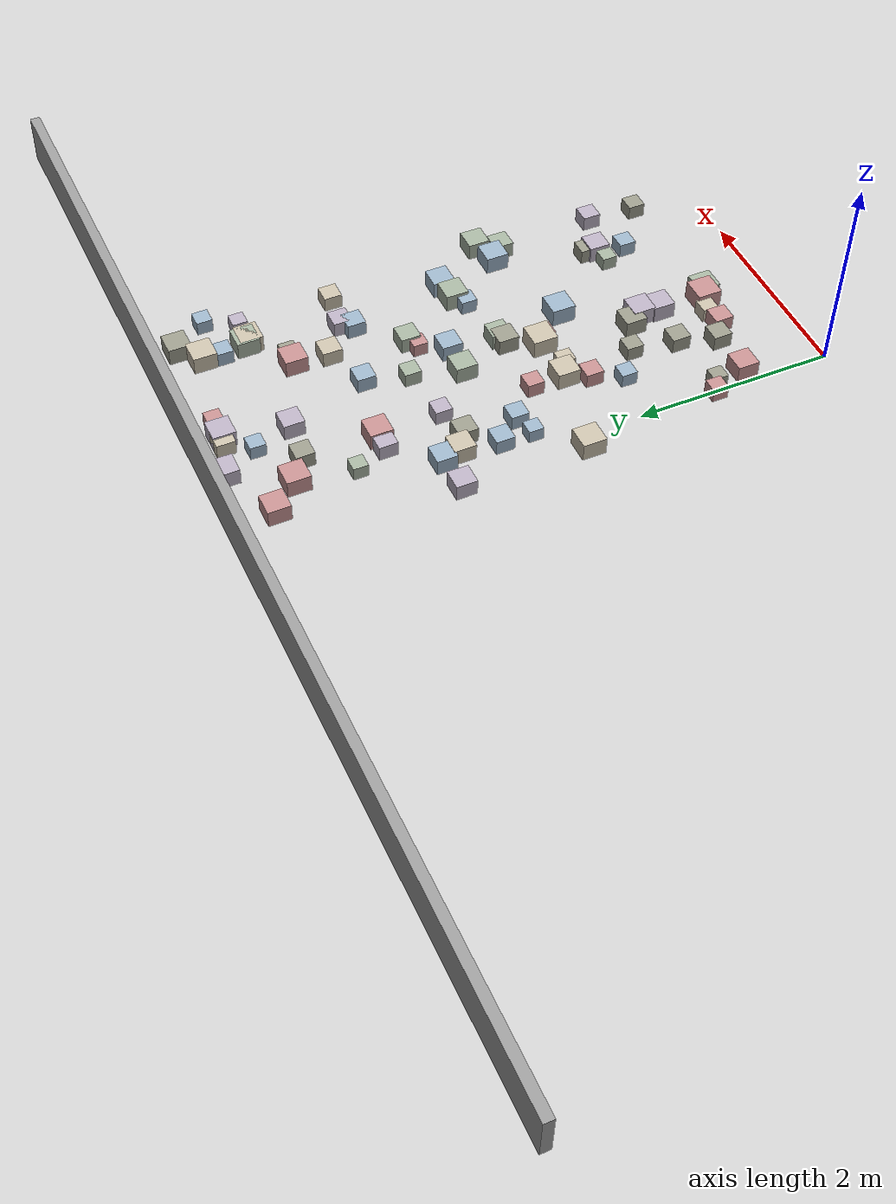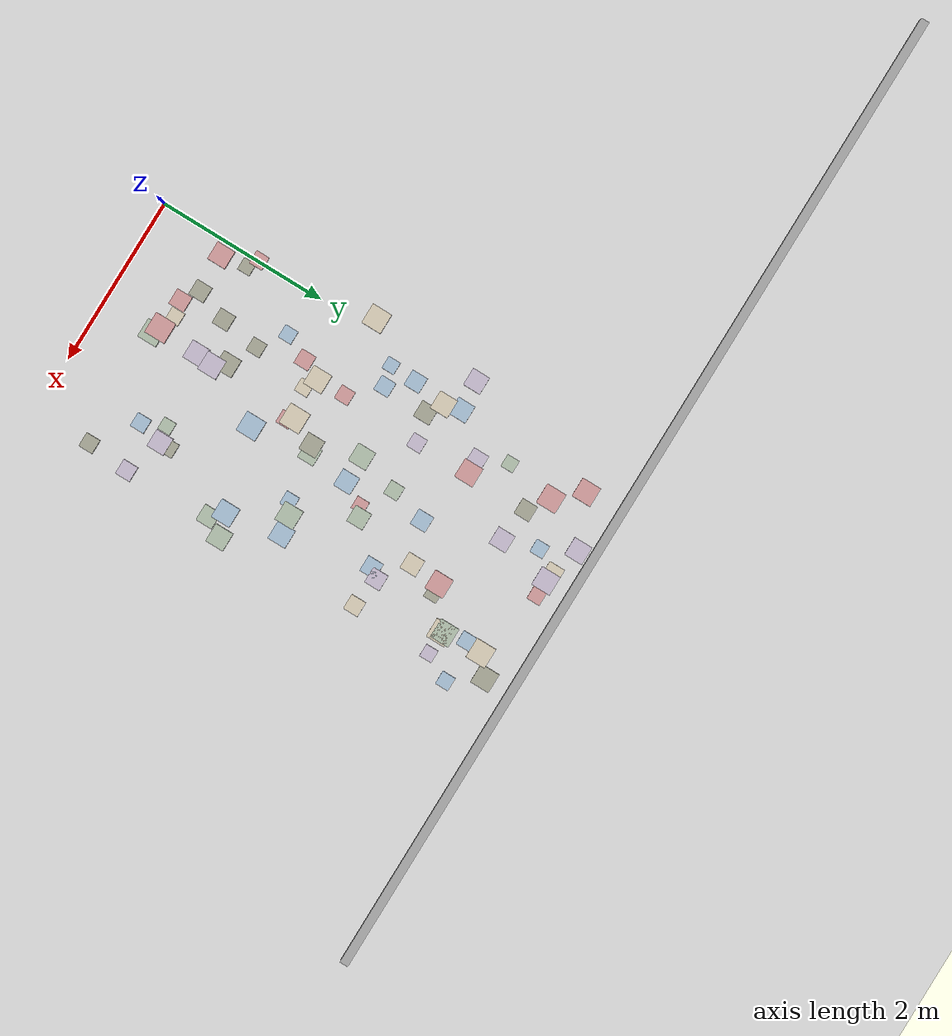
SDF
<sdf version="1.6">
 <world name="small_maze_world">
  <include><uri>model://ground_plane</uri></include>
  <include><uri>model://sun</uri></include>
  <model name="wall_north">
   <static>true</static>
   <pose>0 6 0.25 0 0 0</pose>
   <link name="link">
    <collision name="collision"><geometry><box><size>12 0.1 0.5</size></box></geometry></collision>
    <visual name="visual">
     <geometry><box><size>12 0.1 0.5</size></box></geometry>
     <material><ambient>0.6 0.6 0.6 1</ambient></material>
    </visual>
   </link>
  </model>
  <model name="box_18">
   <static>false</static>
   <pose>1.25 2.44 0.05 0 0 0</pose>
   <link name="link">
    <inertial>
     <mass>0.2</mass>
     <inertia><ixx>0.001</ixx><iyy>0.001</iyy><izz>0.001</izz><ixy>0</ixy><ixz>0</ixz><iyz>0</iyz></inertia>
    </inertial>
    <collision name="collision"><geometry><box><size>0.25 0.25 0.25</size></box></geometry></collision>
    <visual name="visual">
     <geometry><box><size>0.25 0.25 0.25</size></box></geometry>
     <material><ambient>0.78 0.74 0.66 1</ambient><diffuse>0.78 0.74 0.66 1</diffuse></material>
    </visual>
   </link>
  </model>
  <model name="box_24">
   <static>false</static>
   <pose>2.65 2.2 0.05 0 0 0</pose>
   <link name="link">
    <inertial>
     <mass>0.2</mass>
     <inertia><ixx>0.001</ixx><iyy>0.001</iyy><izz>0.001</izz><ixy>0</ixy><ixz>0</ixz><iyz>0</iyz></inertia>
    </inertial>
    <collision name="collision"><geometry><box><size>0.2 0.2 0.2</size></box></geometry></collision>
    <visual name="visual">
     <geometry><box><size>0.2 0.2 0.2</size></box></geometry>
     <material><ambient>0.64 0.69 0.62 1</ambient><diffuse>0.64 0.69 0.62 1</diffuse></material>
    </visual>
   </link>
  </model>
  <model name="box_25">
   <static>false</static>
   <pose>2.66 5.02 0.05 0 0 0</pose>
   <link name="link">
    <inertial>
     <mass>0.2</mass>
     <inertia><ixx>0.001</ixx><iyy>0.001</iyy><izz>0.001</izz><ixy>0</ixy><ixz>0</ixz><iyz>0</iyz></inertia>
    </inertial>
    <collision name="collision"><geometry><box><size>0.15 0.15 0.15</size></box></geometry></collision>
    <visual name="visual">
     <geometry><box><size>0.15 0.15 0.15</size></box></geometry>
     <material><ambient>0.72 0.68 0.75 1</ambient><diffuse>0.72 0.68 0.75 1</diffuse></material>
    </visual>
   </link>
  </model>
  <model name="box_28">
   <static>false</static>
   <pose>2.64 4.06 0.05 0 0 0</pose>
   <link name="link">
    <inertial>
     <mass>0.2</mass>
     <inertia><ixx>0.001</ixx><iyy>0.001</iyy><izz>0.001</izz><ixy>0</ixy><ixz>0</ixz><iyz>0</iyz></inertia>
    </inertial>
    <collision name="collision"><geometry><box><size>0.18 0.18 0.18</size></box></geometry></collision>
    <visual name="visual">
     <geometry><box><size>0.18 0.18 0.18</size></box></geometry>
     <material><ambient>0.78 0.74 0.66 1</ambient><diffuse>0.78 0.74 0.66 1</diffuse></material>
    </visual>
   </link>
  </model>
  <model name="box_30">
   <static>false</static>
   <pose>2.27 4.11 0.05 0 0 0</pose>
   <link name="link">
    <inertial>
     <mass>0.2</mass>
     <inertia><ixx>0.001</ixx><iyy>0.001</iyy><izz>0.001</izz><ixy>0</ixy><ixz>0</ixz><iyz>0</iyz></inertia>
    </inertial>
    <collision name="collision"><geometry><box><size>0.19 0.19 0.19</size></box></geometry></collision>
    <visual name="visual">
     <geometry><box><size>0.19 0.19 0.19</size></box></geometry>
     <material><ambient>0.72 0.68 0.75 1</ambient><diffuse>0.72 0.68 0.75 1</diffuse></material>
    </visual>
   </link>
  </model>
  <model name="box_31">
   <static>false</static>
   <pose>0.78 5.1 0.05 0 0 0</pose>
   <link name="link">
    <inertial>
     <mass>0.2</mass>
     <inertia><ixx>0.001</ixx><iyy>0.001</iyy><izz>0.001</izz><ixy>0</ixy><ixz>0</ixz><iyz>0</iyz></inertia>
    </inertial>
    <collision name="collision"><geometry><box><size>0.19 0.19 0.19</size></box></geometry></collision>
    <visual name="visual">
     <geometry><box><size>0.19 0.19 0.19</size></box></geometry>
     <material><ambient>0.6 0.6 0.54 1</ambient><diffuse>0.6 0.6 0.54 1</diffuse></material>
    </visual>
   </link>
  </model>
  <model name="box_40">
   <static>false</static>
   <pose>1.8 3.6 0.05 0 0 0</pose>
   <link name="link">
    <inertial>
     <mass>0.2</mass>
     <inertia><ixx>0.001</ixx><iyy>0.001</iyy><izz>0.001</izz><ixy>0</ixy><ixz>0</ixz><iyz>0</iyz></inertia>
    </inertial>
    <collision name="collision"><geometry><box><size>0.2 0.2 0.2</size></box></geometry></collision>
    <visual name="visual">
     <geometry><box><size>0.2 0.2 0.2</size></box></geometry>
     <material><ambient>0.64 0.69 0.62 1</ambient><diffuse>0.64 0.69 0.62 1</diffuse></material>
    </visual>
   </link>
  </model>
  <model name="box_42">
   <static>false</static>
   <pose>-0.14 2.63 0.05 0 0 0</pose>
   <link name="link">
    <inertial>
     <mass>0.2</mass>
     <inertia><ixx>0.001</ixx><iyy>0.001</iyy><izz>0.001</izz><ixy>0</ixy><ixz>0</ixz><iyz>0</iyz></inertia>
    </inertial>
    <collision name="collision"><geometry><box><size>0.24 0.24 0.24</size></box></geometry></collision>
    <visual name="visual">
     <geometry><box><size>0.24 0.24 0.24</size></box></geometry>
     <material><ambient>0.78 0.74 0.66 1</ambient><diffuse>0.78 0.74 0.66 1</diffuse></material>
    </visual>
   </link>
  </model>
  <model name="box_43">
   <static>false</static>
   <pose>0.27 5.56 0.05 0 0 0</pose>
   <link name="link">
    <inertial>
     <mass>0.2</mass>
     <inertia><ixx>0.001</ixx><iyy>0.001</iyy><izz>0.001</izz><ixy>0</ixy><ixz>0</ixz><iyz>0</iyz></inertia>
    </inertial>
    <collision name="collision"><geometry><box><size>0.23 0.23 0.23</size></box></geometry></collision>
    <visual name="visual">
     <geometry><box><size>0.23 0.23 0.23</size></box></geometry>
     <material><ambient>0.76 0.56 0.56 1</ambient><diffuse>0.76 0.56 0.56 1</diffuse></material>
    </visual>
   </link>
  </model>
  <model name="box_44">
   <static>false</static>
   <pose>0.81 0.71 0.05 0 0 0</pose>
   <link name="link">
    <inertial>
     <mass>0.2</mass>
     <inertia><ixx>0.001</ixx><iyy>0.001</iyy><izz>0.001</izz><ixy>0</ixy><ixz>0</ixz><iyz>0</iyz></inertia>
    </inertial>
    <collision name="collision"><geometry><box><size>0.19 0.19 0.19</size></box></geometry></collision>
    <visual name="visual">
     <geometry><box><size>0.19 0.19 0.19</size></box></geometry>
     <material><ambient>0.76 0.56 0.56 1</ambient><diffuse>0.76 0.56 0.56 1</diffuse></material>
    </visual>
   </link>
  </model>
  <model name="box_52">
   <static>false</static>
   <pose>0.53 5.27 0.05 0 0 0</pose>
   <link name="link">
    <inertial>
     <mass>0.2</mass>
     <inertia><ixx>0.001</ixx><iyy>0.001</iyy><izz>0.001</izz><ixy>0</ixy><ixz>0</ixz><iyz>0</iyz></inertia>
    </inertial>
    <collision name="collision"><geometry><box><size>0.24 0.24 0.24</size></box></geometry></collision>
    <visual name="visual">
     <geometry><box><size>0.24 0.24 0.24</size></box></geometry>
     <material><ambient>0.76 0.56 0.56 1</ambient><diffuse>0.76 0.56 0.56 1</diffuse></material>
    </visual>
   </link>
  </model>
  <model name="box_61">
   <static>false</static>
   <pose>1.31 2.36 0.05 0 0 0</pose>
   <link name="link">
    <inertial>
     <mass>0.2</mass>
     <inertia><ixx>0.001</ixx><iyy>0.001</iyy><izz>0.001</izz><ixy>0</ixy><ixz>0</ixz><iyz>0</iyz></inertia>
    </inertial>
    <collision name="collision"><geometry><box><size>0.16 0.16 0.16</size></box></geometry></collision>
    <visual name="visual">
     <geometry><box><size>0.16 0.16 0.16</size></box></geometry>
     <material><ambient>0.76 0.56 0.56 1</ambient><diffuse>0.76 0.56 0.56 1</diffuse></material>
    </visual>
   </link>
  </model>
  <model name="box_62">
   <static>false</static>
   <pose>1.51 5.69 0.05 0 0 0</pose>
   <link name="link">
    <inertial>
     <mass>0.2</mass>
     <inertia><ixx>0.001</ixx><iyy>0.001</iyy><izz>0.001</izz><ixy>0</ixy><ixz>0</ixz><iyz>0</iyz></inertia>
    </inertial>
    <collision name="collision"><geometry><box><size>0.16 0.16 0.16</size></box></geometry></collision>
    <visual name="visual">
     <geometry><box><size>0.16 0.16 0.16</size></box></geometry>
     <material><ambient>0.76 0.56 0.56 1</ambient><diffuse>0.76 0.56 0.56 1</diffuse></material>
    </visual>
   </link>
  </model>
  <model name="box_65">
   <static>false</static>
   <pose>-0.13 3.91 0.05 0 0 0</pose>
   <link name="link">
    <inertial>
     <mass>0.2</mass>
     <inertia><ixx>0.001</ixx><iyy>0.001</iyy><izz>0.001</izz><ixy>0</ixy><ixz>0</ixz><iyz>0</iyz></inertia>
    </inertial>
    <collision name="collision"><geometry><box><size>0.21 0.21 0.21</size></box></geometry></collision>
    <visual name="visual">
     <geometry><box><size>0.21 0.21 0.21</size></box></geometry>
     <material><ambient>0.72 0.68 0.75 1</ambient><diffuse>0.72 0.68 0.75 1</diffuse></material>
    </visual>
   </link>
  </model>
  <model name="box_83">
   <static>false</static>
   <pose>1.27 0.63 0.05 0 0 0</pose>
   <link name="link">
    <inertial>
     <mass>0.2</mass>
     <inertia><ixx>0.001</ixx><iyy>0.001</iyy><izz>0.001</izz><ixy>0</ixy><ixz>0</ixz><iyz>0</iyz></inertia>
    </inertial>
    <collision name="collision"><geometry><box><size>0.23 0.23 0.23</size></box></geometry></collision>
    <visual name="visual">
     <geometry><box><size>0.23 0.23 0.23</size></box></geometry>
     <material><ambient>0.64 0.69 0.62 1</ambient><diffuse>0.64 0.69 0.62 1</diffuse></material>
    </visual>
   </link>
  </model>
  <model name="box_86">
   <static>false</static>
   <pose>1.32 5.69 0.05 0 0 0</pose>
   <link name="link">
    <inertial>
     <mass>0.2</mass>
     <inertia><ixx>0.001</ixx><iyy>0.001</iyy><izz>0.001</izz><ixy>0</ixy><ixz>0</ixz><iyz>0</iyz></inertia>
    </inertial>
    <collision name="collision"><geometry><box><size>0.23 0.23 0.23</size></box></geometry></collision>
    <visual name="visual">
     <geometry><box><size>0.23 0.23 0.23</size></box></geometry>
     <material><ambient>0.72 0.68 0.75 1</ambient><diffuse>0.72 0.68 0.75 1</diffuse></material>
    </visual>
   </link>
  </model>
  <model name="box_94">
   <static>false</static>
   <pose>2.82 5.33 0.05 0 0 0</pose>
   <link name="link">
    <inertial>
     <mass>0.2</mass>
     <inertia><ixx>0.001</ixx><iyy>0.001</iyy><izz>0.001</izz><ixy>0</ixy><ixz>0</ixz><iyz>0</iyz></inertia>
    </inertial>
    <collision name="collision"><geometry><box><size>0.16 0.16 0.16</size></box></geometry></collision>
    <visual name="visual">
     <geometry><box><size>0.16 0.16 0.16</size></box></geometry>
     <material><ambient>0.6 0.69 0.77 1</ambient><diffuse>0.6 0.69 0.77 1</diffuse></material>
    </visual>
   </link>
  </model>
  <model name="box_96">
   <static>false</static>
   <pose>2.17 1.04 0.05 0 0 0</pose>
   <link name="link">
    <inertial>
     <mass>0.2</mass>
     <inertia><ixx>0.001</ixx><iyy>0.001</iyy><izz>0.001</izz><ixy>0</ixy><ixz>0</ixz><iyz>0</iyz></inertia>
    </inertial>
    <collision name="collision"><geometry><box><size>0.17 0.17 0.17</size></box></geometry></collision>
    <visual name="visual">
     <geometry><box><size>0.17 0.17 0.17</size></box></geometry>
     <material><ambient>0.6 0.69 0.77 1</ambient><diffuse>0.6 0.69 0.77 1</diffuse></material>
    </visual>
   </link>
  </model>
  <model name="box_99">
   <static>false</static>
   <pose>2.24 1.44 0.05 0 0 0</pose>
   <link name="link">
    <inertial>
     <mass>0.2</mass>
     <inertia><ixx>0.001</ixx><iyy>0.001</iyy><izz>0.001</izz><ixy>0</ixy><ixz>0</ixz><iyz>0</iyz></inertia>
    </inertial>
    <collision name="collision"><geometry><box><size>0.17 0.17 0.17</size></box></geometry></collision>
    <visual name="visual">
     <geometry><box><size>0.17 0.17 0.17</size></box></geometry>
     <material><ambient>0.6 0.6 0.54 1</ambient><diffuse>0.6 0.6 0.54 1</diffuse></material>
    </visual>
   </link>
  </model>
  <model name="box_103">
   <static>false</static>
   <pose>1.23 1.37 0.05 0 0 0</pose>
   <link name="link">
    <inertial>
     <mass>0.2</mass>
     <inertia><ixx>0.001</ixx><iyy>0.001</iyy><izz>0.001</izz><ixy>0</ixy><ixz>0</ixz><iyz>0</iyz></inertia>
    </inertial>
    <collision name="collision"><geometry><box><size>0.23 0.23 0.23</size></box></geometry></collision>
    <visual name="visual">
     <geometry><box><size>0.23 0.23 0.23</size></box></geometry>
     <material><ambient>0.72 0.68 0.75 1</ambient><diffuse>0.72 0.68 0.75 1</diffuse></material>
    </visual>
   </link>
  </model>
  <model name="box_105">
   <static>false</static>
   <pose>0.51 1.9 0.05 0 0 0</pose>
   <link name="link">
    <inertial>
     <mass>0.2</mass>
     <inertia><ixx>0.001</ixx><iyy>0.001</iyy><izz>0.001</izz><ixy>0</ixy><ixz>0</ixz><iyz>0</iyz></inertia>
    </inertial>
    <collision name="collision"><geometry><box><size>0.16 0.16 0.16</size></box></geometry></collision>
    <visual name="visual">
     <geometry><box><size>0.16 0.16 0.16</size></box></geometry>
     <material><ambient>0.6 0.69 0.77 1</ambient><diffuse>0.6 0.69 0.77 1</diffuse></material>
    </visual>
   </link>
  </model>
  <model name="box_111">
   <static>false</static>
   <pose>1.54 3.28 0.05 0 0 0</pose>
   <link name="link">
    <inertial>
     <mass>0.2</mass>
     <inertia><ixx>0.001</ixx><iyy>0.001</iyy><izz>0.001</izz><ixy>0</ixy><ixz>0</ixz><iyz>0</iyz></inertia>
    </inertial>
    <collision name="collision"><geometry><box><size>0.21 0.21 0.21</size></box></geometry></collision>
    <visual name="visual">
     <geometry><box><size>0.21 0.21 0.21</size></box></geometry>
     <material><ambient>0.6 0.69 0.77 1</ambient><diffuse>0.6 0.69 0.77 1</diffuse></material>
    </visual>
   </link>
  </model>
  <model name="box_112">
   <static>false</static>
   <pose>1.49 2.78 0.05 0 0 0</pose>
   <link name="link">
    <inertial>
     <mass>0.2</mass>
     <inertia><ixx>0.001</ixx><iyy>0.001</iyy><izz>0.001</izz><ixy>0</ixy><ixz>0</ixz><iyz>0</iyz></inertia>
    </inertial>
    <collision name="collision"><geometry><box><size>0.2 0.2 0.2</size></box></geometry></collision>
    <visual name="visual">
     <geometry><box><size>0.2 0.2 0.2</size></box></geometry>
     <material><ambient>0.64 0.69 0.62 1</ambient><diffuse>0.64 0.69 0.62 1</diffuse></material>
    </visual>
   </link>
  </model>
  <model name="box_114">
   <static>false</static>
   <pose>1.22 3.28 0.05 0 0 0</pose>
   <link name="link">
    <inertial>
     <mass>0.2</mass>
     <inertia><ixx>0.001</ixx><iyy>0.001</iyy><izz>0.001</izz><ixy>0</ixy><ixz>0</ixz><iyz>0</iyz></inertia>
    </inertial>
    <collision name="collision"><geometry><box><size>0.22 0.22 0.22</size></box></geometry></collision>
    <visual name="visual">
     <geometry><box><size>0.22 0.22 0.22</size></box></geometry>
     <material><ambient>0.64 0.69 0.62 1</ambient><diffuse>0.64 0.69 0.62 1</diffuse></material>
    </visual>
   </link>
  </model>
  <model name="box_118">
   <static>false</static>
   <pose>0.22 3.94 0.05 0 0 0</pose>
   <link name="link">
    <inertial>
     <mass>0.2</mass>
     <inertia><ixx>0.001</ixx><iyy>0.001</iyy><izz>0.001</izz><ixy>0</ixy><ixz>0</ixz><iyz>0</iyz></inertia>
    </inertial>
    <collision name="collision"><geometry><box><size>0.21 0.21 0.21</size></box></geometry></collision>
    <visual name="visual">
     <geometry><box><size>0.21 0.21 0.21</size></box></geometry>
     <material><ambient>0.6 0.69 0.77 1</ambient><diffuse>0.6 0.69 0.77 1</diffuse></material>
    </visual>
   </link>
  </model>
  <model name="box_131">
   <static>false</static>
   <pose>2.38 5.05 0.05 0 0 0</pose>
   <link name="link">
    <inertial>
     <mass>0.2</mass>
     <inertia><ixx>0.001</ixx><iyy>0.001</iyy><izz>0.001</izz><ixy>0</ixy><ixz>0</ixz><iyz>0</iyz></inertia>
    </inertial>
    <collision name="collision"><geometry><box><size>0.23 0.23 0.23</size></box></geometry></collision>
    <visual name="visual">
     <geometry><box><size>0.23 0.23 0.23</size></box></geometry>
     <material><ambient>0.64 0.69 0.62 1</ambient><diffuse>0.64 0.69 0.62 1</diffuse></material>
    </visual>
   </link>
  </model>
  <model name="box_139">
   <static>false</static>
   <pose>1.21 5.71 0.05 0 0 0</pose>
   <link name="link">
    <inertial>
     <mass>0.2</mass>
     <inertia><ixx>0.001</ixx><iyy>0.001</iyy><izz>0.001</izz><ixy>0</ixy><ixz>0</ixz><iyz>0</iyz></inertia>
    </inertial>
    <collision name="collision"><geometry><box><size>0.19 0.19 0.19</size></box></geometry></collision>
    <visual name="visual">
     <geometry><box><size>0.19 0.19 0.19</size></box></geometry>
     <material><ambient>0.78 0.74 0.66 1</ambient><diffuse>0.78 0.74 0.66 1</diffuse></material>
    </visual>
   </link>
  </model>
  <model name="box_140">
   <static>false</static>
   <pose>2.24 1.33 0.05 0 0 0</pose>
   <link name="link">
    <inertial>
     <mass>0.2</mass>
     <inertia><ixx>0.001</ixx><iyy>0.001</iyy><izz>0.001</izz><ixy>0</ixy><ixz>0</ixz><iyz>0</iyz></inertia>
    </inertial>
    <collision name="collision"><geometry><box><size>0.21 0.21 0.21</size></box></geometry></collision>
    <visual name="visual">
     <geometry><box><size>0.21 0.21 0.21</size></box></geometry>
     <material><ambient>0.72 0.68 0.75 1</ambient><diffuse>0.72 0.68 0.75 1</diffuse></material>
    </visual>
   </link>
  </model>
  <model name="box_145">
   <static>false</static>
   <pose>2.33 5.3 0.05 0 0 0</pose>
   <link name="link">
    <inertial>
     <mass>0.2</mass>
     <inertia><ixx>0.001</ixx><iyy>0.001</iyy><izz>0.001</izz><ixy>0</ixy><ixz>0</ixz><iyz>0</iyz></inertia>
    </inertial>
    <collision name="collision"><geometry><box><size>0.17 0.17 0.17</size></box></geometry></collision>
    <visual name="visual">
     <geometry><box><size>0.17 0.17 0.17</size></box></geometry>
     <material><ambient>0.6 0.69 0.77 1</ambient><diffuse>0.6 0.69 0.77 1</diffuse></material>
    </visual>
   </link>
  </model>
  <model name="box_158">
   <static>false</static>
   <pose>0.74 1.22 0.05 0 0 0</pose>
   <link name="link">
    <inertial>
     <mass>0.2</mass>
     <inertia><ixx>0.001</ixx><iyy>0.001</iyy><izz>0.001</izz><ixy>0</ixy><ixz>0</ixz><iyz>0</iyz></inertia>
    </inertial>
    <collision name="collision"><geometry><box><size>0.19 0.19 0.19</size></box></geometry></collision>
    <visual name="visual">
     <geometry><box><size>0.19 0.19 0.19</size></box></geometry>
     <material><ambient>0.6 0.6 0.54 1</ambient><diffuse>0.6 0.6 0.54 1</diffuse></material>
    </visual>
   </link>
  </model>
  <model name="box_164">
   <static>false</static>
   <pose>1.35 3.77 0.05 0 0 0</pose>
   <link name="link">
    <inertial>
     <mass>0.2</mass>
     <inertia><ixx>0.001</ixx><iyy>0.001</iyy><izz>0.001</izz><ixy>0</ixy><ixz>0</ixz><iyz>0</iyz></inertia>
    </inertial>
    <collision name="collision"><geometry><box><size>0.17 0.17 0.17</size></box></geometry></collision>
    <visual name="visual">
     <geometry><box><size>0.17 0.17 0.17</size></box></geometry>
     <material><ambient>0.64 0.69 0.62 1</ambient><diffuse>0.64 0.69 0.62 1</diffuse></material>
    </visual>
   </link>
  </model>
  <model name="box_168">
   <static>false</static>
   <pose>2.05 1.3 0.05 0 0 0</pose>
   <link name="link">
    <inertial>
     <mass>0.2</mass>
     <inertia><ixx>0.001</ixx><iyy>0.001</iyy><izz>0.001</izz><ixy>0</ixy><ixz>0</ixz><iyz>0</iyz></inertia>
    </inertial>
    <collision name="collision"><geometry><box><size>0.15 0.15 0.15</size></box></geometry></collision>
    <visual name="visual">
     <geometry><box><size>0.15 0.15 0.15</size></box></geometry>
     <material><ambient>0.64 0.69 0.62 1</ambient><diffuse>0.64 0.69 0.62 1</diffuse></material>
    </visual>
   </link>
  </model>
  <model name="box_170">
   <static>false</static>
   <pose>0.12 1.13 0.05 0 0 0</pose>
   <link name="link">
    <inertial>
     <mass>0.2</mass>
     <inertia><ixx>0.001</ixx><iyy>0.001</iyy><izz>0.001</izz><ixy>0</ixy><ixz>0</ixz><iyz>0</iyz></inertia>
    </inertial>
    <collision name="collision"><geometry><box><size>0.15 0.15 0.15</size></box></geometry></collision>
    <visual name="visual">
     <geometry><box><size>0.15 0.15 0.15</size></box></geometry>
     <material><ambient>0.6 0.6 0.54 1</ambient><diffuse>0.6 0.6 0.54 1</diffuse></material>
    </visual>
   </link>
  </model>
  <model name="box_172">
   <static>false</static>
   <pose>2.19 4.0 0.05 0 0 0</pose>
   <link name="link">
    <inertial>
     <mass>0.2</mass>
     <inertia><ixx>0.001</ixx><iyy>0.001</iyy><izz>0.001</izz><ixy>0</ixy><ixz>0</ixz><iyz>0</iyz></inertia>
    </inertial>
    <collision name="collision"><geometry><box><size>0.19 0.19 0.19</size></box></geometry></collision>
    <visual name="visual">
     <geometry><box><size>0.19 0.19 0.19</size></box></geometry>
     <material><ambient>0.6 0.69 0.77 1</ambient><diffuse>0.6 0.69 0.77 1</diffuse></material>
    </visual>
   </link>
  </model>
  <model name="box_175">
   <static>false</static>
   <pose>1.57 2.08 0.05 0 0 0</pose>
   <link name="link">
    <inertial>
     <mass>0.2</mass>
     <inertia><ixx>0.001</ixx><iyy>0.001</iyy><izz>0.001</izz><ixy>0</ixy><ixz>0</ixz><iyz>0</iyz></inertia>
    </inertial>
    <collision name="collision"><geometry><box><size>0.24 0.24 0.24</size></box></geometry></collision>
    <visual name="visual">
     <geometry><box><size>0.24 0.24 0.24</size></box></geometry>
     <material><ambient>0.6 0.69 0.77 1</ambient><diffuse>0.6 0.69 0.77 1</diffuse></material>
    </visual>
   </link>
  </model>
  <model name="box_182">
   <static>false</static>
   <pose>2.08 4.72 0.05 0 0 0</pose>
   <link name="link">
    <inertial>
     <mass>0.2</mass>
     <inertia><ixx>0.001</ixx><iyy>0.001</iyy><izz>0.001</izz><ixy>0</ixy><ixz>0</ixz><iyz>0</iyz></inertia>
    </inertial>
    <collision name="collision"><geometry><box><size>0.16 0.16 0.16</size></box></geometry></collision>
    <visual name="visual">
     <geometry><box><size>0.16 0.16 0.16</size></box></geometry>
     <material><ambient>0.6 0.6 0.54 1</ambient><diffuse>0.6 0.6 0.54 1</diffuse></material>
    </visual>
   </link>
  </model>
  <model name="box_186">
   <static>false</static>
   <pose>0.78 3.71 0.05 0 0 0</pose>
   <link name="link">
    <inertial>
     <mass>0.2</mass>
     <inertia><ixx>0.001</ixx><iyy>0.001</iyy><izz>0.001</izz><ixy>0</ixy><ixz>0</ixz><iyz>0</iyz></inertia>
    </inertial>
    <collision name="collision"><geometry><box><size>0.17 0.17 0.17</size></box></geometry></collision>
    <visual name="visual">
     <geometry><box><size>0.17 0.17 0.17</size></box></geometry>
     <material><ambient>0.72 0.68 0.75 1</ambient><diffuse>0.72 0.68 0.75 1</diffuse></material>
    </visual>
   </link>
  </model>
  <model name="box_187">
   <static>false</static>
   <pose>2.78 2.42 0.05 0 0 0</pose>
   <link name="link">
    <inertial>
     <mass>0.2</mass>
     <inertia><ixx>0.001</ixx><iyy>0.001</iyy><izz>0.001</izz><ixy>0</ixy><ixz>0</ixz><iyz>0</iyz></inertia>
    </inertial>
    <collision name="collision"><geometry><box><size>0.22 0.22 0.22</size></box></geometry></collision>
    <visual name="visual">
     <geometry><box><size>0.22 0.22 0.22</size></box></geometry>
     <material><ambient>0.64 0.69 0.62 1</ambient><diffuse>0.64 0.69 0.62 1</diffuse></material>
    </visual>
   </link>
  </model>
  <model name="box_196">
   <static>false</static>
   <pose>0.44 4.69 0.05 0 0 0</pose>
   <link name="link">
    <inertial>
     <mass>0.2</mass>
     <inertia><ixx>0.001</ixx><iyy>0.001</iyy><izz>0.001</izz><ixy>0</ixy><ixz>0</ixz><iyz>0</iyz></inertia>
    </inertial>
    <collision name="collision"><geometry><box><size>0.15 0.15 0.15</size></box></geometry></collision>
    <visual name="visual">
     <geometry><box><size>0.15 0.15 0.15</size></box></geometry>
     <material><ambient>0.64 0.69 0.62 1</ambient><diffuse>0.64 0.69 0.62 1</diffuse></material>
    </visual>
   </link>
  </model>
  <model name="box_200">
   <static>false</static>
   <pose>0.75 2.77 0.05 0 0 0</pose>
   <link name="link">
    <inertial>
     <mass>0.2</mass>
     <inertia><ixx>0.001</ixx><iyy>0.001</iyy><izz>0.001</izz><ixy>0</ixy><ixz>0</ixz><iyz>0</iyz></inertia>
    </inertial>
    <collision name="collision"><geometry><box><size>0.17 0.17 0.17</size></box></geometry></collision>
    <visual name="visual">
     <geometry><box><size>0.17 0.17 0.17</size></box></geometry>
     <material><ambient>0.76 0.56 0.56 1</ambient><diffuse>0.76 0.56 0.56 1</diffuse></material>
    </visual>
   </link>
  </model>
  <model name="box_212">
   <static>false</static>
   <pose>1.47 4.2 0.05 0 0 0</pose>
   <link name="link">
    <inertial>
     <mass>0.2</mass>
     <inertia><ixx>0.001</ixx><iyy>0.001</iyy><izz>0.001</izz><ixy>0</ixy><ixz>0</ixz><iyz>0</iyz></inertia>
    </inertial>
    <collision name="collision"><geometry><box><size>0.19 0.19 0.19</size></box></geometry></collision>
    <visual name="visual">
     <geometry><box><size>0.19 0.19 0.19</size></box></geometry>
     <material><ambient>0.6 0.69 0.77 1</ambient><diffuse>0.6 0.69 0.77 1</diffuse></material>
    </visual>
   </link>
  </model>
  <model name="box_213">
   <static>false</static>
   <pose>1.4 2.75 0.05 0 0 0</pose>
   <link name="link">
    <inertial>
     <mass>0.2</mass>
     <inertia><ixx>0.001</ixx><iyy>0.001</iyy><izz>0.001</izz><ixy>0</ixy><ixz>0</ixz><iyz>0</iyz></inertia>
    </inertial>
    <collision name="collision"><geometry><box><size>0.21 0.21 0.21</size></box></geometry></collision>
    <visual name="visual">
     <geometry><box><size>0.21 0.21 0.21</size></box></geometry>
     <material><ambient>0.6 0.6 0.54 1</ambient><diffuse>0.6 0.6 0.54 1</diffuse></material>
    </visual>
   </link>
  </model>
  <model name="box_215">
   <static>false</static>
   <pose>1.06 5.45 0.05 0 0 0</pose>
   <link name="link">
    <inertial>
     <mass>0.2</mass>
     <inertia><ixx>0.001</ixx><iyy>0.001</iyy><izz>0.001</izz><ixy>0</ixy><ixz>0</ixz><iyz>0</iyz></inertia>
    </inertial>
    <collision name="collision"><geometry><box><size>0.16 0.16 0.16</size></box></geometry></collision>
    <visual name="visual">
     <geometry><box><size>0.16 0.16 0.16</size></box></geometry>
     <material><ambient>0.6 0.69 0.77 1</ambient><diffuse>0.6 0.69 0.77 1</diffuse></material>
    </visual>
   </link>
  </model>
  <model name="box_217">
   <static>false</static>
   <pose>-0.01 1.21 0.05 0 0 0</pose>
   <link name="link">
    <inertial>
     <mass>0.2</mass>
     <inertia><ixx>0.001</ixx><iyy>0.001</iyy><izz>0.001</izz><ixy>0</ixy><ixz>0</ixz><iyz>0</iyz></inertia>
    </inertial>
    <collision name="collision"><geometry><box><size>0.16 0.16 0.16</size></box></geometry></collision>
    <visual name="visual">
     <geometry><box><size>0.16 0.16 0.16</size></box></geometry>
     <material><ambient>0.76 0.56 0.56 1</ambient><diffuse>0.76 0.56 0.56 1</diffuse></material>
    </visual>
   </link>
  </model>
  <model name="box_218">
   <static>false</static>
   <pose>1.68 3.54 0.05 0 0 0</pose>
   <link name="link">
    <inertial>
     <mass>0.2</mass>
     <inertia><ixx>0.001</ixx><iyy>0.001</iyy><izz>0.001</izz><ixy>0</ixy><ixz>0</ixz><iyz>0</iyz></inertia>
    </inertial>
    <collision name="collision"><geometry><box><size>0.15 0.15 0.15</size></box></geometry></collision>
    <visual name="visual">
     <geometry><box><size>0.15 0.15 0.15</size></box></geometry>
     <material><ambient>0.76 0.56 0.56 1</ambient><diffuse>0.76 0.56 0.56 1</diffuse></material>
    </visual>
   </link>
  </model>
  <model name="box_219">
   <static>false</static>
   <pose>0.86 5.82 0.05 0 0 0</pose>
   <link name="link">
    <inertial>
     <mass>0.2</mass>
     <inertia><ixx>0.001</ixx><iyy>0.001</iyy><izz>0.001</izz><ixy>0</ixy><ixz>0</ixz><iyz>0</iyz></inertia>
    </inertial>
    <collision name="collision"><geometry><box><size>0.22 0.22 0.22</size></box></geometry></collision>
    <visual name="visual">
     <geometry><box><size>0.22 0.22 0.22</size></box></geometry>
     <material><ambient>0.72 0.68 0.75 1</ambient><diffuse>0.72 0.68 0.75 1</diffuse></material>
    </visual>
   </link>
  </model>
  <model name="box_220">
   <static>false</static>
   <pose>0.45 3.62 0.05 0 0 0</pose>
   <link name="link">
    <inertial>
     <mass>0.2</mass>
     <inertia><ixx>0.001</ixx><iyy>0.001</iyy><izz>0.001</izz><ixy>0</ixy><ixz>0</ixz><iyz>0</iyz></inertia>
    </inertial>
    <collision name="collision"><geometry><box><size>0.2 0.2 0.2</size></box></geometry></collision>
    <visual name="visual">
     <geometry><box><size>0.2 0.2 0.2</size></box></geometry>
     <material><ambient>0.6 0.6 0.54 1</ambient><diffuse>0.6 0.6 0.54 1</diffuse></material>
    </visual>
   </link>
  </model>
  <model name="box_223">
   <static>false</static>
   <pose>0.44 3.09 0.05 0 0 0</pose>
   <link name="link">
    <inertial>
     <mass>0.2</mass>
     <inertia><ixx>0.001</ixx><iyy>0.001</iyy><izz>0.001</izz><ixy>0</ixy><ixz>0</ixz><iyz>0</iyz></inertia>
    </inertial>
    <collision name="collision"><geometry><box><size>0.18 0.18 0.18</size></box></geometry></collision>
    <visual name="visual">
     <geometry><box><size>0.18 0.18 0.18</size></box></geometry>
     <material><ambient>0.6 0.69 0.77 1</ambient><diffuse>0.6 0.69 0.77 1</diffuse></material>
    </visual>
   </link>
  </model>
  <model name="box_230">
   <static>false</static>
   <pose>1.13 1.51 0.05 0 0 0</pose>
   <link name="link">
    <inertial>
     <mass>0.2</mass>
     <inertia><ixx>0.001</ixx><iyy>0.001</iyy><izz>0.001</izz><ixy>0</ixy><ixz>0</ixz><iyz>0</iyz></inertia>
    </inertial>
    <collision name="collision"><geometry><box><size>0.22 0.22 0.22</size></box></geometry></collision>
    <visual name="visual">
     <geometry><box><size>0.22 0.22 0.22</size></box></geometry>
     <material><ambient>0.6 0.6 0.54 1</ambient><diffuse>0.6 0.6 0.54 1</diffuse></material>
    </visual>
   </link>
  </model>
  <model name="box_231">
   <static>false</static>
   <pose>1.19 5.05 0.05 0 0 0</pose>
   <link name="link">
    <inertial>
     <mass>0.2</mass>
     <inertia><ixx>0.001</ixx><iyy>0.001</iyy><izz>0.001</izz><ixy>0</ixy><ixz>0</ixz><iyz>0</iyz></inertia>
    </inertial>
    <collision name="collision"><geometry><box><size>0.21 0.21 0.21</size></box></geometry></collision>
    <visual name="visual">
     <geometry><box><size>0.21 0.21 0.21</size></box></geometry>
     <material><ambient>0.72 0.68 0.75 1</ambient><diffuse>0.72 0.68 0.75 1</diffuse></material>
    </visual>
   </link>
  </model>
  <model name="box_234">
   <static>false</static>
   <pose>1.18 0.68 0.05 0 0 0</pose>
   <link name="link">
    <inertial>
     <mass>0.2</mass>
     <inertia><ixx>0.001</ixx><iyy>0.001</iyy><izz>0.001</izz><ixy>0</ixy><ixz>0</ixz><iyz>0</iyz></inertia>
    </inertial>
    <collision name="collision"><geometry><box><size>0.25 0.25 0.25</size></box></geometry></collision>
    <visual name="visual">
     <geometry><box><size>0.25 0.25 0.25</size></box></geometry>
     <material><ambient>0.76 0.56 0.56 1</ambient><diffuse>0.76 0.56 0.56 1</diffuse></material>
    </visual>
   </link>
  </model>
  <model name="box_237">
   <static>false</static>
   <pose>1.93 4.36 0.05 0 0 0</pose>
   <link name="link">
    <inertial>
     <mass>0.2</mass>
     <inertia><ixx>0.001</ixx><iyy>0.001</iyy><izz>0.001</izz><ixy>0</ixy><ixz>0</ixz><iyz>0</iyz></inertia>
    </inertial>
    <collision name="collision"><geometry><box><size>0.2 0.2 0.2</size></box></geometry></collision>
    <visual name="visual">
     <geometry><box><size>0.2 0.2 0.2</size></box></geometry>
     <material><ambient>0.78 0.74 0.66 1</ambient><diffuse>0.78 0.74 0.66 1</diffuse></material>
    </visual>
   </link>
  </model>
  <model name="box_260">
   <static>false</static>
   <pose>2.52 2.34 0.05 0 0 0</pose>
   <link name="link">
    <inertial>
     <mass>0.2</mass>
     <inertia><ixx>0.001</ixx><iyy>0.001</iyy><izz>0.001</izz><ixy>0</ixy><ixz>0</ixz><iyz>0</iyz></inertia>
    </inertial>
    <collision name="collision"><geometry><box><size>0.23 0.23 0.23</size></box></geometry></collision>
    <visual name="visual">
     <geometry><box><size>0.23 0.23 0.23</size></box></geometry>
     <material><ambient>0.6 0.69 0.77 1</ambient><diffuse>0.6 0.69 0.77 1</diffuse></material>
    </visual>
   </link>
  </model>
  <model name="box_271">
   <static>false</static>
   <pose>0.76 4.36 0.05 0 0 0</pose>
   <link name="link">
    <inertial>
     <mass>0.2</mass>
     <inertia><ixx>0.001</ixx><iyy>0.001</iyy><izz>0.001</izz><ixy>0</ixy><ixz>0</ixz><iyz>0</iyz></inertia>
    </inertial>
    <collision name="collision"><geometry><box><size>0.23 0.23 0.23</size></box></geometry></collision>
    <visual name="visual">
     <geometry><box><size>0.23 0.23 0.23</size></box></geometry>
     <material><ambient>0.76 0.56 0.56 1</ambient><diffuse>0.76 0.56 0.56 1</diffuse></material>
    </visual>
   </link>
  </model>
  <model name="box_272">
   <static>false</static>
   <pose>0.76 2.43 0.05 0 0 0</pose>
   <link name="link">
    <inertial>
     <mass>0.2</mass>
     <inertia><ixx>0.001</ixx><iyy>0.001</iyy><izz>0.001</izz><ixy>0</ixy><ixz>0</ixz><iyz>0</iyz></inertia>
    </inertial>
    <collision name="collision"><geometry><box><size>0.23 0.23 0.23</size></box></geometry></collision>
    <visual name="visual">
     <geometry><box><size>0.23 0.23 0.23</size></box></geometry>
     <material><ambient>0.78 0.74 0.66 1</ambient><diffuse>0.78 0.74 0.66 1</diffuse></material>
    </visual>
   </link>
  </model>
  <model name="box_273">
   <static>false</static>
   <pose>2.65 0.68 0.05 0 0 0</pose>
   <link name="link">
    <inertial>
     <mass>0.2</mass>
     <inertia><ixx>0.001</ixx><iyy>0.001</iyy><izz>0.001</izz><ixy>0</ixy><ixz>0</ixz><iyz>0</iyz></inertia>
    </inertial>
    <collision name="collision"><geometry><box><size>0.17 0.17 0.17</size></box></geometry></collision>
    <visual name="visual">
     <geometry><box><size>0.17 0.17 0.17</size></box></geometry>
     <material><ambient>0.6 0.6 0.54 1</ambient><diffuse>0.6 0.6 0.54 1</diffuse></material>
    </visual>
   </link>
  </model>
  <model name="box_274">
   <static>false</static>
   <pose>2.04 2.86 0.05 0 0 0</pose>
   <link name="link">
    <inertial>
     <mass>0.2</mass>
     <inertia><ixx>0.001</ixx><iyy>0.001</iyy><izz>0.001</izz><ixy>0</ixy><ixz>0</ixz><iyz>0</iyz></inertia>
    </inertial>
    <collision name="collision"><geometry><box><size>0.16 0.16 0.16</size></box></geometry></collision>
    <visual name="visual">
     <geometry><box><size>0.16 0.16 0.16</size></box></geometry>
     <material><ambient>0.6 0.69 0.77 1</ambient><diffuse>0.6 0.69 0.77 1</diffuse></material>
    </visual>
   </link>
  </model>
  <model name="box_282">
   <static>false</static>
   <pose>0.61 0.84 0.05 0 0 0</pose>
   <link name="link">
    <inertial>
     <mass>0.2</mass>
     <inertia><ixx>0.001</ixx><iyy>0.001</iyy><izz>0.001</izz><ixy>0</ixy><ixz>0</ixz><iyz>0</iyz></inertia>
    </inertial>
    <collision name="collision"><geometry><box><size>0.19 0.19 0.19</size></box></geometry></collision>
    <visual name="visual">
     <geometry><box><size>0.19 0.19 0.19</size></box></geometry>
     <material><ambient>0.6 0.6 0.54 1</ambient><diffuse>0.6 0.6 0.54 1</diffuse></material>
    </visual>
   </link>
  </model>
  <model name="box_287">
   <static>false</static>
   <pose>0.99 0.75 0.05 0 0 0</pose>
   <link name="link">
    <inertial>
     <mass>0.2</mass>
     <inertia><ixx>0.001</ixx><iyy>0.001</iyy><izz>0.001</izz><ixy>0</ixy><ixz>0</ixz><iyz>0</iyz></inertia>
    </inertial>
    <collision name="collision"><geometry><box><size>0.16 0.16 0.16</size></box></geometry></collision>
    <visual name="visual">
     <geometry><box><size>0.16 0.16 0.16</size></box></geometry>
     <material><ambient>0.78 0.74 0.66 1</ambient><diffuse>0.78 0.74 0.66 1</diffuse></material>
    </visual>
   </link>
  </model>
  <model name="box_290">
   <static>false</static>
   <pose>0.91 2.35 0.05 0 0 0</pose>
   <link name="link">
    <inertial>
     <mass>0.2</mass>
     <inertia><ixx>0.001</ixx><iyy>0.001</iyy><izz>0.001</izz><ixy>0</ixy><ixz>0</ixz><iyz>0</iyz></inertia>
    </inertial>
    <collision name="collision"><geometry><box><size>0.16 0.16 0.16</size></box></geometry></collision>
    <visual name="visual">
     <geometry><box><size>0.16 0.16 0.16</size></box></geometry>
     <material><ambient>0.78 0.74 0.66 1</ambient><diffuse>0.78 0.74 0.66 1</diffuse></material>
    </visual>
   </link>
  </model>
  <model name="box_291">
   <static>false</static>
   <pose>1.21 1.16 0.05 0 0 0</pose>
   <link name="link">
    <inertial>
     <mass>0.2</mass>
     <inertia><ixx>0.001</ixx><iyy>0.001</iyy><izz>0.001</izz><ixy>0</ixy><ixz>0</ixz><iyz>0</iyz></inertia>
    </inertial>
    <collision name="collision"><geometry><box><size>0.22 0.22 0.22</size></box></geometry></collision>
    <visual name="visual">
     <geometry><box><size>0.22 0.22 0.22</size></box></geometry>
     <material><ambient>0.72 0.68 0.75 1</ambient><diffuse>0.72 0.68 0.75 1</diffuse></material>
    </visual>
   </link>
  </model>
  <model name="box_298">
   <static>false</static>
   <pose>0.21 3.03 0.05 0 0 0</pose>
   <link name="link">
    <inertial>
     <mass>0.2</mass>
     <inertia><ixx>0.001</ixx><iyy>0.001</iyy><izz>0.001</izz><ixy>0</ixy><ixz>0</ixz><iyz>0</iyz></inertia>
    </inertial>
    <collision name="collision"><geometry><box><size>0.15 0.15 0.15</size></box></geometry></collision>
    <visual name="visual">
     <geometry><box><size>0.15 0.15 0.15</size></box></geometry>
     <material><ambient>0.6 0.69 0.77 1</ambient><diffuse>0.6 0.69 0.77 1</diffuse></material>
    </visual>
   </link>
  </model>
  <model name="box_325">
   <static>false</static>
   <pose>0.16 0.83 0.05 0 0 0</pose>
   <link name="link">
    <inertial>
     <mass>0.2</mass>
     <inertia><ixx>0.001</ixx><iyy>0.001</iyy><izz>0.001</izz><ixy>0</ixy><ixz>0</ixz><iyz>0</iyz></inertia>
    </inertial>
    <collision name="collision"><geometry><box><size>0.22 0.22 0.22</size></box></geometry></collision>
    <visual name="visual">
     <geometry><box><size>0.22 0.22 0.22</size></box></geometry>
     <material><ambient>0.76 0.56 0.56 1</ambient><diffuse>0.76 0.56 0.56 1</diffuse></material>
    </visual>
   </link>
  </model>
  <model name="box_328">
   <static>false</static>
   <pose>2.18 2.94 0.05 0 0 0</pose>
   <link name="link">
    <inertial>
     <mass>0.2</mass>
     <inertia><ixx>0.001</ixx><iyy>0.001</iyy><izz>0.001</izz><ixy>0</ixy><ixz>0</ixz><iyz>0</iyz></inertia>
    </inertial>
    <collision name="collision"><geometry><box><size>0.23 0.23 0.23</size></box></geometry></collision>
    <visual name="visual">
     <geometry><box><size>0.23 0.23 0.23</size></box></geometry>
     <material><ambient>0.64 0.69 0.62 1</ambient><diffuse>0.64 0.69 0.62 1</diffuse></material>
    </visual>
   </link>
  </model>
  <model name="box_334">
   <static>false</static>
   <pose>2.57 5.68 0.05 0 0 0</pose>
   <link name="link">
    <inertial>
     <mass>0.2</mass>
     <inertia><ixx>0.001</ixx><iyy>0.001</iyy><izz>0.001</izz><ixy>0</ixy><ixz>0</ixz><iyz>0</iyz></inertia>
    </inertial>
    <collision name="collision"><geometry><box><size>0.23 0.23 0.23</size></box></geometry></collision>
    <visual name="visual">
     <geometry><box><size>0.23 0.23 0.23</size></box></geometry>
     <material><ambient>0.6 0.6 0.54 1</ambient><diffuse>0.6 0.6 0.54 1</diffuse></material>
    </visual>
   </link>
  </model>
  <model name="box_340">
   <static>false</static>
   <pose>0.27 3.74 0.05 0 0 0</pose>
   <link name="link">
    <inertial>
     <mass>0.2</mass>
     <inertia><ixx>0.001</ixx><iyy>0.001</iyy><izz>0.001</izz><ixy>0</ixy><ixz>0</ixz><iyz>0</iyz></inertia>
    </inertial>
    <collision name="collision"><geometry><box><size>0.22 0.22 0.22</size></box></geometry></collision>
    <visual name="visual">
     <geometry><box><size>0.22 0.22 0.22</size></box></geometry>
     <material><ambient>0.78 0.74 0.66 1</ambient><diffuse>0.78 0.74 0.66 1</diffuse></material>
    </visual>
   </link>
  </model>
  <model name="box_343">
   <static>false</static>
   <pose>0.22 3.35 0.05 0 0 0</pose>
   <link name="link">
    <inertial>
     <mass>0.2</mass>
     <inertia><ixx>0.001</ixx><iyy>0.001</iyy><izz>0.001</izz><ixy>0</ixy><ixz>0</ixz><iyz>0</iyz></inertia>
    </inertial>
    <collision name="collision"><geometry><box><size>0.19 0.19 0.19</size></box></geometry></collision>
    <visual name="visual">
     <geometry><box><size>0.19 0.19 0.19</size></box></geometry>
     <material><ambient>0.6 0.69 0.77 1</ambient><diffuse>0.6 0.69 0.77 1</diffuse></material>
    </visual>
   </link>
  </model>
  <model name="box_347">
   <static>false</static>
   <pose>0.81 1.68 0.05 0 0 0</pose>
   <link name="link">
    <inertial>
     <mass>0.2</mass>
     <inertia><ixx>0.001</ixx><iyy>0.001</iyy><izz>0.001</izz><ixy>0</ixy><ixz>0</ixz><iyz>0</iyz></inertia>
    </inertial>
    <collision name="collision"><geometry><box><size>0.17 0.17 0.17</size></box></geometry></collision>
    <visual name="visual">
     <geometry><box><size>0.17 0.17 0.17</size></box></geometry>
     <material><ambient>0.6 0.6 0.54 1</ambient><diffuse>0.6 0.6 0.54 1</diffuse></material>
    </visual>
   </link>
  </model>
  <model name="box_350">
   <static>false</static>
   <pose>2.36 5.5 0.05 0 0 0</pose>
   <link name="link">
    <inertial>
     <mass>0.2</mass>
     <inertia><ixx>0.001</ixx><iyy>0.001</iyy><izz>0.001</izz><ixy>0</ixy><ixz>0</ixz><iyz>0</iyz></inertia>
    </inertial>
    <collision name="collision"><geometry><box><size>0.24 0.24 0.24</size></box></geometry></collision>
    <visual name="visual">
     <geometry><box><size>0.24 0.24 0.24</size></box></geometry>
     <material><ambient>0.78 0.74 0.66 1</ambient><diffuse>0.78 0.74 0.66 1</diffuse></material>
    </visual>
   </link>
  </model>
  <model name="box_369">
   <static>false</static>
   <pose>2.4 5.01 0.05 0 0 0</pose>
   <link name="link">
    <inertial>
     <mass>0.2</mass>
     <inertia><ixx>0.001</ixx><iyy>0.001</iyy><izz>0.001</izz><ixy>0</ixy><ixz>0</ixz><iyz>0</iyz></inertia>
    </inertial>
    <collision name="collision"><geometry><box><size>0.23 0.23 0.23</size></box></geometry></collision>
    <visual name="visual">
     <geometry><box><size>0.23 0.23 0.23</size></box></geometry>
     <material><ambient>0.78 0.74 0.66 1</ambient><diffuse>0.78 0.74 0.66 1</diffuse></material>
    </visual>
   </link>
  </model>
  <model name="box_372">
   <static>false</static>
   <pose>0.59 4.36 0.05 0 0 0</pose>
   <link name="link">
    <inertial>
     <mass>0.2</mass>
     <inertia><ixx>0.001</ixx><iyy>0.001</iyy><izz>0.001</izz><ixy>0</ixy><ixz>0</ixz><iyz>0</iyz></inertia>
    </inertial>
    <collision name="collision"><geometry><box><size>0.19 0.19 0.19</size></box></geometry></collision>
    <visual name="visual">
     <geometry><box><size>0.19 0.19 0.19</size></box></geometry>
     <material><ambient>0.72 0.68 0.75 1</ambient><diffuse>0.72 0.68 0.75 1</diffuse></material>
    </visual>
   </link>
  </model>
  <model name="box_384">
   <static>false</static>
   <pose>1.96 4.72 0.05 0 0 0</pose>
   <link name="link">
    <inertial>
     <mass>0.2</mass>
     <inertia><ixx>0.001</ixx><iyy>0.001</iyy><izz>0.001</izz><ixy>0</ixy><ixz>0</ixz><iyz>0</iyz></inertia>
    </inertial>
    <collision name="collision"><geometry><box><size>0.23 0.23 0.23</size></box></geometry></collision>
    <visual name="visual">
     <geometry><box><size>0.23 0.23 0.23</size></box></geometry>
     <material><ambient>0.76 0.56 0.56 1</ambient><diffuse>0.76 0.56 0.56 1</diffuse></material>
    </visual>
   </link>
  </model>
  <model name="box_393">
   <static>false</static>
   <pose>0.65 2.2 0.05 0 0 0</pose>
   <link name="link">
    <inertial>
     <mass>0.2</mass>
     <inertia><ixx>0.001</ixx><iyy>0.001</iyy><izz>0.001</izz><ixy>0</ixy><ixz>0</ixz><iyz>0</iyz></inertia>
    </inertial>
    <collision name="collision"><geometry><box><size>0.18 0.18 0.18</size></box></geometry></collision>
    <visual name="visual">
     <geometry><box><size>0.18 0.18 0.18</size></box></geometry>
     <material><ambient>0.76 0.56 0.56 1</ambient><diffuse>0.76 0.56 0.56 1</diffuse></material>
    </visual>
   </link>
  </model>
  <model name="box_425">
   <static>false</static>
   <pose>2.4 2.98 0.05 0 0 0</pose>
   <link name="link">
    <inertial>
     <mass>0.2</mass>
     <inertia><ixx>0.001</ixx><iyy>0.001</iyy><izz>0.001</izz><ixy>0</ixy><ixz>0</ixz><iyz>0</iyz></inertia>
    </inertial>
    <collision name="collision"><geometry><box><size>0.22 0.22 0.22</size></box></geometry></collision>
    <visual name="visual">
     <geometry><box><size>0.22 0.22 0.22</size></box></geometry>
     <material><ambient>0.6 0.69 0.77 1</ambient><diffuse>0.6 0.69 0.77 1</diffuse></material>
    </visual>
   </link>
  </model>
  <model name="box_448">
   <static>false</static>
   <pose>2.69 1.18 0.05 0 0 0</pose>
   <link name="link">
    <inertial>
     <mass>0.2</mass>
     <inertia><ixx>0.001</ixx><iyy>0.001</iyy><izz>0.001</izz><ixy>0</ixy><ixz>0</ixz><iyz>0</iyz></inertia>
    </inertial>
    <collision name="collision"><geometry><box><size>0.18 0.18 0.18</size></box></geometry></collision>
    <visual name="visual">
     <geometry><box><size>0.18 0.18 0.18</size></box></geometry>
     <material><ambient>0.72 0.68 0.75 1</ambient><diffuse>0.72 0.68 0.75 1</diffuse></material>
    </visual>
   </link>
  </model>
 </world>
</sdf>
